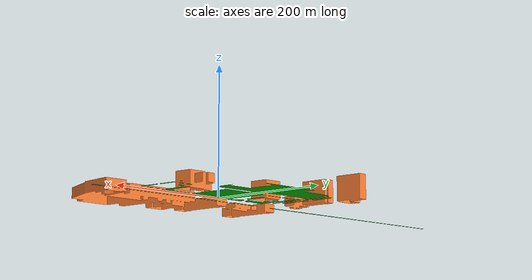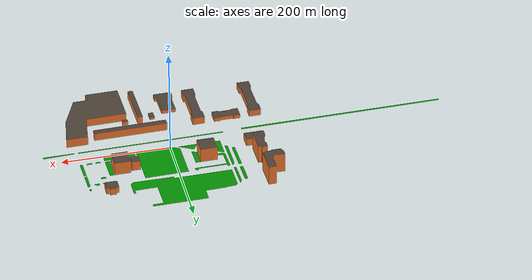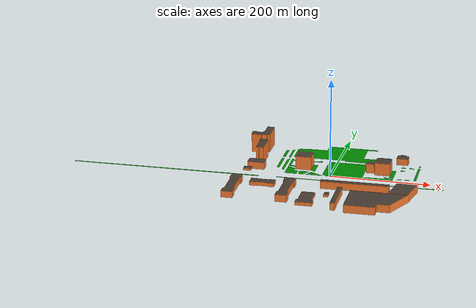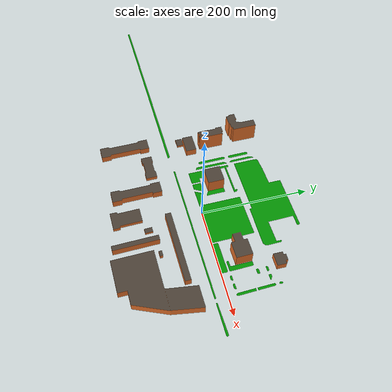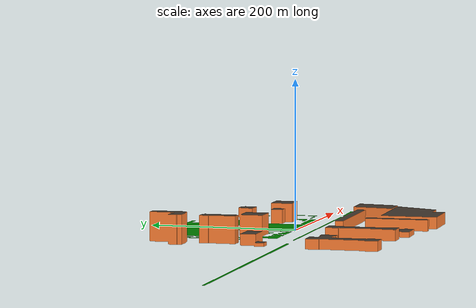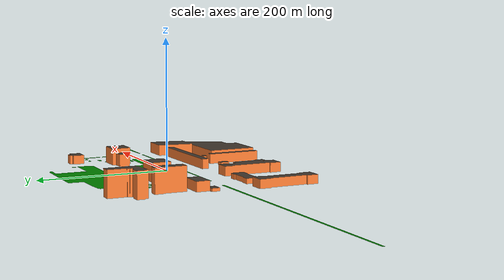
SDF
<?xml version="1.0" ?>
<sdf version="1.9">
  <model name="map_zone">
    <static>true</static>
    <link name="link">
      <collision name="collision">
        <geometry>
          <mesh>
            <uri>model://map_zone/meshes/map_zone.dae</uri>
          </mesh>
        </geometry>
      </collision>
      <visual name="visual">
        <geometry>
          <mesh>
            <uri>model://map_zone/meshes/map_zone.dae</uri>
          </mesh>
        </geometry>
      </visual>
    </link>
  </model>
</sdf>
